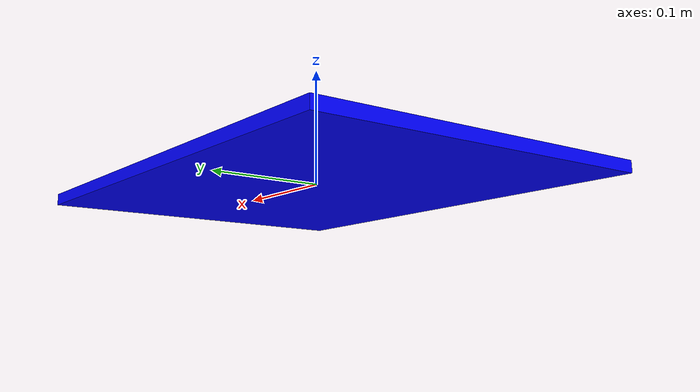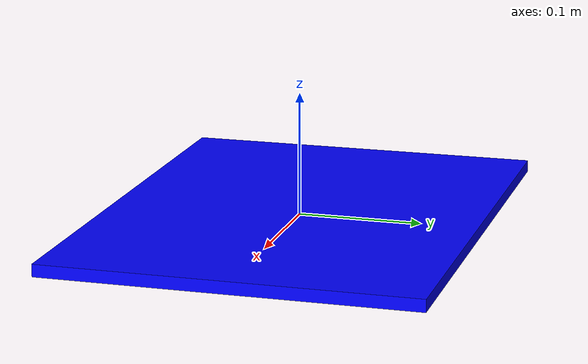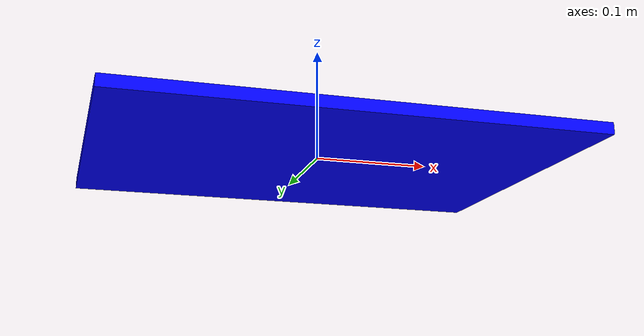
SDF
<?xml version="1.0"?>
<sdf version="1.7">
  <model name="tray">
    <pose>0 0 0 0 0 0</pose>
    <link name="tray_link">
      <inertial>
        <mass>2</mass>
        <inertia>
          <ixx>1.0</ixx>
          <ixy>0.0</ixy>
          <ixz>0.0</ixz>
          <iyy>1.0</iyy>
          <iyz>0.0</iyz>
          <izz>1.0</izz>
        </inertia>
      </inertial>
      <collision name="box_collision">
        <geometry>
          <box>
            <size>0.4 0.3 0.01</size>
          </box>
        </geometry>
        <drake:proximity_properties>
          <drake:mu_dynamic>1.5</drake:mu_dynamic>
          <drake:mu_static>2.0</drake:mu_static>
          <drake:rigid_hydroelastic/>
        </drake:proximity_properties>
      </collision>
      <visual name="box_visual">
        <geometry>
          <box>
            <size>0.4 0.3 0.01</size>
          </box>
        </geometry>
        <material>
            <ambient>0 0 1 1</ambient>
            <diffuse>0 0 1 1</diffuse>
            <specular>0 0 0.3 1</specular>
            <emissive>0 0 0 1</emissive>
        </material>
      </visual>
    </link>
  </model>
</sdf>
